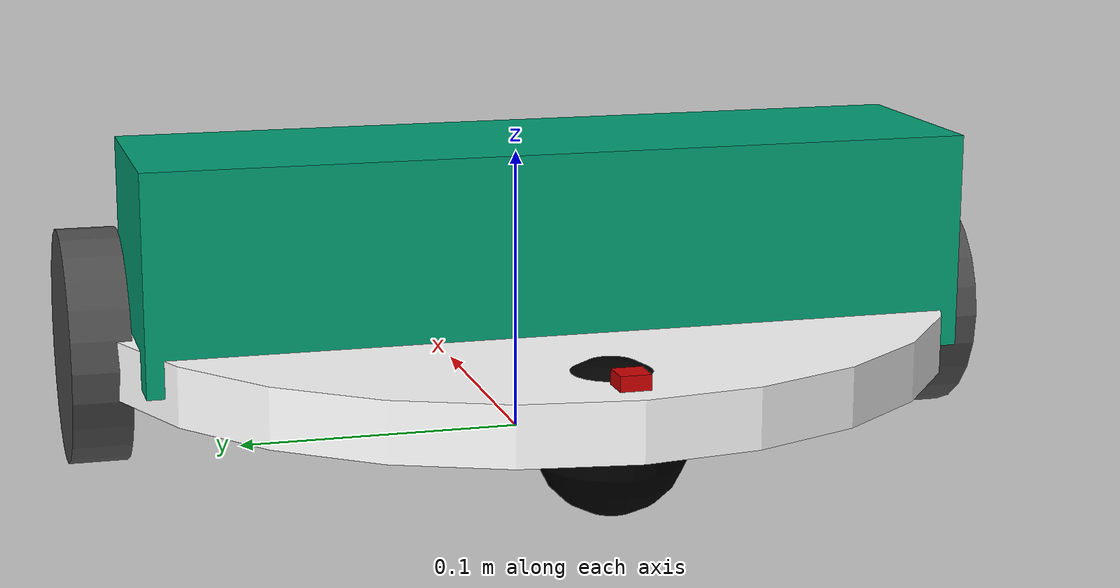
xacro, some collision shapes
<?xml version="1.0"?>
<robot name="differential_wheeled_robot" xmlns:xacro="http://www.ros.org/wiki/xacro">
  <xacro:include filename="$(find simple_robot_description_2wheels)/urdf/wheel.urdf.xacro" />

  <!-- PROPERTY LIST -->
  <!--All units in m-kg-s-radians unit system -->
  <xacro:property name="M_PI" value="3.1415926535897931" />
  <xacro:property name="M_PI_2" value="1.570796327" />
  <xacro:property name="DEG_TO_RAD" value="0.017453293" />

  <!-- Main body radius and height -->
  <!-- Main Body Cylinder base   -->
  <xacro:property name="base_height" value="0.02" />
  <xacro:property name="base_radius" value="0.15" />
  <xacro:property name="base_mass" value="5" /> <!-- in kg-->

  <!-- caster wheel radius and height -->
  <!-- caster wheel mass -->
  <xacro:property name="caster_f_height" value="0.04" />
  <xacro:property name="caster_f_radius" value="0.025" />
  <xacro:property name="caster_f_mass" value="0.5" /> <!-- in kg-->

  <!-- caster wheel radius and height -->
  <!-- caster wheel mass -->
  <xacro:property name="caster_b_height" value="0.04" />
  <xacro:property name="caster_b_radius" value="0.025" />
  <xacro:property name="caster_b_mass" value="0.5" /> <!-- in kg-->

  <!-- Wheels -->
  <xacro:property name="wheel_mass" value="2.5" /> --> <!-- in kg-->
  <xacro:property name="base_x_origin_to_wheel_origin" value="0.25" />
  <xacro:property name="base_y_origin_to_wheel_origin" value="0.3" />
  <xacro:property name="base_z_origin_to_wheel_origin" value="0.0" />

  <!-- Macro for calculating inertia of cylinder -->
  <xacro:macro name="cylinder_inertia" params="m r h">
    <inertia  ixx="${m*(3*r*r+h*h)/12}" ixy = "0" ixz = "0"
      iyy="${m*(3*r*r+h*h)/12}" iyz = "0"
      izz="${m*r*r/2}" />
    </xacro:macro>

    <!-- BASE-FOOTPRINT -->
    <!-- base_footprint is a fictitious link(frame) that is on the ground right below base_link origin -->
    <link name="base_footprint">
      <inertial>
        <mass value="0.0001" />
        <origin xyz="0 0 0" />
        <inertia ixx="0.0001" ixy="0.0" ixz="0.0"
          iyy="0.0001" iyz="0.0"
          izz="0.0001" />
        </inertial>
        <visual>
          <origin xyz="0 0 0" rpy="0 0 0" />
          <geometry>
            <box size="0.001 0.001 0.001" />
          </geometry>
        </visual>
      </link>

      <gazebo reference="base_footprint">
        <turnGravityOff>false</turnGravityOff>
      </gazebo>

      <joint name="base_footprint_joint" type="fixed">
        <origin xyz="0 0 ${wheel_radius - base_z_origin_to_wheel_origin}" rpy="0 0 0" />
        <parent link="base_footprint"/>
        <child link="base_link" />
      </joint>

      <!-- BASE-LINK -->
      <!--Actual body/chassis of the robot-->
      <link name="base_link">
        <inertial>
          <mass value="${base_mass}" />
          <origin xyz="0 0 0" />
          <!--The 3x3 rotational inertia matrix. -->
          <cylinder_inertia  m="${base_mass}" r="${base_radius}" h="${base_height}" />
        </inertial>
        <visual>
          <origin xyz="0 0 0" rpy="0 0 0" />
          <geometry>
            <cylinder length="${base_height}" radius="${base_radius}" />
          </geometry>
          <material name="White" />
        </visual>
        <collision>
          <origin xyz="0 0 0" rpy="0 0 0 " />
          <geometry>
            <cylinder length="${base_height}" radius="${base_radius}" />
          </geometry>
        </collision>
      </link>

      <gazebo reference="base_link">
        <material>Gazebo/White</material>
        <turnGravityOff>false</turnGravityOff>
      </gazebo>

      <!--Caster front  -->

      <link name="caster_front_link">
        <visual>
          <origin xyz="0 0.02 0" rpy="${M_PI/2} 0 0" />
          <geometry>
            <sphere radius="${caster_f_radius}" />
          </geometry>
          <material name="Black" />
        </visual>
        <collision>
          <geometry>
            <sphere radius="${caster_f_radius}" />
          </geometry>
          <origin xyz="0 0.02 0" rpy="${M_PI/2} 0 0" />
        </collision>
        <inertial>
          <mass value="${caster_f_mass}" />
          <origin xyz="0 0 0" />
          <inertia ixx="0.001" ixy="0.0" ixz="0.0"
            iyy="0.001" iyz="0.0"
            izz="0.001" />
          </inertial>
        </link>

        <joint name="caster_front_joint" type="fixed">
          <parent link="base_link"/>
          <child link="caster_front_link"/>
          <origin xyz="0.115 0.0 0.007" rpy="${-M_PI/2} 0 0"/>
        </joint>

        <gazebo reference="caster_front_link">
          <material>Gazebo/Orange</material>
          <turnGravityOff>false</turnGravityOff>
        </gazebo>

        <!--Caster back  -->
        <link name="caster_back_link">
          <visual>
            <origin xyz="0.02 0.02 0 " rpy="${M_PI/2} 0 0" />
            <geometry>
              <sphere radius="${caster_b_radius}" />
            </geometry>
            <material name="Black" />
          </visual>
          <collision>
            <geometry>
              <sphere radius="${caster_b_radius}" />
            </geometry>
            <origin xyz="0 0.02 0 " rpy="${M_PI/2} 0 0" />
          </collision>
          <inertial>
            <mass value="${caster_b_mass}" />
            <origin xyz="0 0 0" />
            <inertia ixx="0.001" ixy="0.0" ixz="0.0"
              iyy="0.001" iyz="0.0"
              izz="0.001" />
            </inertial>
          </link>

          <joint name="caster_back_joint" type="fixed">
            <parent link="base_link"/>
            <child link="caster_back_link"/>
            <origin xyz="-0.135 0.0 0.009" rpy="${-M_PI/2} 0 0"/>
          </joint>

          <gazebo reference="caster_back_link">
            <material>Gazebo/Orange</material>
            <turnGravityOff>false</turnGravityOff>
          </gazebo>

          <!-- Wheel Definitions -->

          <wheel fb="front" lr="right" parent="base_link" translateX="0" translateY="0.5" flipY="1"/>
          <wheel fb="front" lr="left" parent="base_link" translateX="0" translateY="-0.5" flipY="1"/>

          <!-- Imu 1-->
          <link name="imu_link1">
            <visual>
              <origin xyz="0 0 0" rpy="0 0 0"/>
              <geometry>
                <box size="0.01 0.01 0.01" />
              </geometry>
               <material name="Blue" />
            </visual>

            <inertial>
              <mass value="0.001"/>
              <origin xyz="0 0 0" rpy="0 0 0"/>
              <inertia ixx="1e-6" ixy="0" ixz="0" iyy="1e-6" iyz="0" izz="1e-6" />
            </inertial>
          </link>

          <gazebo reference="imu_link1">
            <material>Gazebo/Blue</material>
            <turnGravityOff>false</turnGravityOff>
          </gazebo>

          <joint name="imu_joint1" type="fixed">
            <origin xyz="0.135 0 0.01" rpy="0 0 0"/>
            <parent link="base_link" />
            <child link="imu_link1" />
          </joint>

          <!-- Imu 2-->
          <link name="imu_link2">
            <visual>
              <origin xyz="0 0 0" rpy="0 0 0"/>
              <geometry>
                <box size="0.01 0.01 0.01" />
              </geometry>
               <material name="Red" />
            </visual>

            <inertial>
              <mass value="0.001"/>
              <origin xyz="0 0 0" rpy="0 0 0"/>
              <inertia ixx="1e-6" ixy="0" ixz="0" iyy="1e-6" iyz="0" izz="1e-6" />
            </inertial>
          </link>

          <gazebo reference="imu_link2">
            <material>Gazebo/Red</material>
            <turnGravityOff>false</turnGravityOff>
          </gazebo>

          <joint name="imu_joint2" type="fixed">
            <origin xyz="-0.135 0 0.01" rpy="0 0 0"/>
            <parent link="base_link" />
            <child link="imu_link2" />
          </joint>

          <!-- Kinect -->
          <joint name="camera_rgb_joint" type="fixed">
            <origin xyz="0 0 0.05" rpy="0 0 0"/>
            <parent link="base_link"/>
            <child link="camera_rgb_frame" />
          </joint>

          <link name="camera_rgb_frame"/>

          <joint name="camera_rgb_optical_joint" type="fixed">
            <origin xyz="0 0 0" rpy="${-M_PI/2} 0 ${-M_PI/2}" />
            <parent link="camera_rgb_frame" />
            <child link="camera_rgb_optical_frame" />
          </joint>

          <link name="camera_rgb_optical_frame"/>

          <joint name="camera_joint" type="fixed">
            <origin xyz="-0.031 0 -0.016" rpy="0 0 0"/>
            <parent link="camera_rgb_frame"/>
            <child link="camera_link"/>
          </joint>

          <link name="camera_link">
            <visual>
              <origin xyz="0 0 0" rpy="0 0 ${M_PI/2}"/>
              <geometry>
                <mesh filename="package://simple_robot_description_2wheels/meshes/kinect.dae"/>
              </geometry>
            </visual>
            <collision>
              <origin xyz="0.0 0.0 0.0" rpy="0 0 0"/>
              <geometry>
                <box size="0.07271 0.27794 0.073"/>
              </geometry>
            </collision>
            <inertial>
              <mass value="0.564" />
              <origin xyz="0 0 0" />
              <inertia ixx="0.003881243" ixy="0.0" ixz="0.0"
                       iyy="0.000498940" iyz="0.0"
                       izz="0.003879257" />
            </inertial>
          </link>

          <joint name="camera_depth_joint" type="fixed">
            <origin xyz="0 0 0" rpy="0 0 0" />
            <parent link="camera_rgb_frame" />
            <child link="camera_depth_frame" />
          </joint>
          <link name="camera_depth_frame"/>

          <joint name="camera_depth_optical_joint" type="fixed">
            <origin xyz="0 0 0" rpy="${-M_PI/2} 0 ${-M_PI/2}" />
            <parent link="camera_depth_frame" />
            <child link="camera_depth_optical_frame" />
          </joint>
          <link name="camera_depth_optical_frame"/>

    <!-- Bring in simulation data for Gazebo.-->
    <xacro:include filename="$(find simple_robot_description_2wheels)/urdf/diff_wheeled_robot.gazebo" />

  </robot>

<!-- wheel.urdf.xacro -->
<robot name="wheel" xmlns:xacro="http://www.ros.org/wiki/xacro">

  <!-- Wheels -->
  <xacro:property name="wheel_radius" value="0.04" />
  <xacro:property name="wheel_height" value="0.02" />
  <xacro:property name="wheel_mass" value="2.5" /> <!-- in kg-->

  <xacro:property name="base_x_origin_to_wheel_origin" value="0.25" />
  <xacro:property name="base_y_origin_to_wheel_origin" value="0.3" />
  <xacro:property name="base_z_origin_to_wheel_origin" value="0.0" />

  <xacro:macro name="cylinder_inertia" params="m r h">
    <inertia  ixx="${m*(3*r*r+h*h)/12}" ixy = "0" ixz = "0"
              iyy="${m*(3*r*r+h*h)/12}" iyz = "0"
              izz="${m*r*r/2}" />
  </xacro:macro>

  <xacro:macro name="wheel" params="fb lr parent translateX translateY flipY"> <!--fb : front, back ; lr: left, right -->
    <link name="${fb}_${lr}_wheel">
      <visual>
        <origin xyz="0 0 0" rpy="${flipY*M_PI/2} 0  0 " />
        <geometry>
          <cylinder length="${wheel_height}" radius="${wheel_radius}" />
        </geometry>
        <material name="DarkGray" />
      </visual>
      <collision>
        <origin xyz="0 0 0" rpy="${flipY*M_PI/2} 0 0 " />
        <geometry>
          <cylinder length="${wheel_height}" radius="${wheel_radius}" />
        </geometry>
      </collision>
      <inertial>
        <mass value="${wheel_mass}" />
        <origin xyz="0 0 0" />
        <cylinder_inertia  m="${wheel_mass}" r="${wheel_radius}" h="${wheel_height}" />
      </inertial>
    </link>

    <gazebo reference="${fb}_${lr}_wheel">
      <mu1 value="1.0"/>
      <mu2 value="1.0"/>
      <kp  value="10000000.0" />
      <kd  value="1.0" />
      <fdir1 value="1 0 0"/>
      <material>Gazebo/Black</material>
      <turnGravityOff>false</turnGravityOff>
    </gazebo>

    <joint name="${fb}_${lr}_joint" type="continuous">
      <parent link="${parent}"/>
      <child link="${fb}_${lr}_wheel"/>
      <origin xyz="${translateX * base_x_origin_to_wheel_origin} ${translateY * base_y_origin_to_wheel_origin} ${base_z_origin_to_wheel_origin}" rpy="0 0 0" />
      <axis xyz="0 1 0" rpy="0  0" />
      <limit effort="100" velocity="100"/>
      <joint_properties damping="0.0" friction="0.0"/>
    </joint>

  </xacro:macro>
</robot>

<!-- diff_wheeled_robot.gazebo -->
<robot>

  <!--Move wheels custom behaviour-->
  <gazebo>
    <plugin name="move_wheels" filename="libmoveWheels_plugin.so">
    </plugin>
  </gazebo>

  <!--Get encoders ticks behaviour-->
  <gazebo>
    <plugin name="encoders_ticks" filename="libencodersTicks_plugin.so">
    </plugin>
  </gazebo>

  <!--Get Odometry-->
  <gazebo>
    <plugin name="get_odom" filename="libodom_plugin.so">
      <frontLeftJoint>front_left_joint</frontLeftJoint>
      <frontRightJoint>front_right_joint</frontRightJoint>
      <wheelSeparation>0.3</wheelSeparation>
      <wheelDiameter>0.08</wheelDiameter>
      <updateRate>40</updateRate>
    </plugin>
  </gazebo>

  <!-- Defining the colors used in this robot -->
  <material name="Black">
    <color rgba="0.0 0.0 0.0 1.0"/>
  </material>

  <material name="Red">
    <color rgba="0.8 0.0 0.0 1.0"/>
  </material>

  <material name="White">
    <color rgba="1.0 1.0 1.0 1.0"/>
  </material>

  <material name="Blue">
    <color rgba="0.0 0.0 0.8 1.0"/>
  </material>

  <!-- hokuyo -->
  <gazebo reference="hokuyo_link">
    <sensor type="gpu_ray" name="head_hokuyo_sensor">
      <pose>0 0 0 0 0 0</pose>
      <visualize>false</visualize>
      <update_rate>40</update_rate>
      <ray>
        <scan>
          <horizontal>
            <samples>720</samples>
            <resolution>1</resolution>
            <min_angle>-1.570796</min_angle>
            <max_angle>1.570796</max_angle>
          </horizontal>
        </scan>
        <range>
          <min>0.10</min>
          <max>30.0</max>
          <resolution>0.01</resolution>
        </range>
        <noise>
          <type>gaussian</type>
          <mean>0.0</mean>
          <stddev>0.01</stddev>
        </noise>
      </ray>
      <plugin name="gazebo_ros_head_hokuyo_controller" filename="libgazebo_ros_gpu_laser.so">
        <topicName>/scan</topicName>
        <frameName>hokuyo_link</frameName>
      </plugin>
    </sensor>
  </gazebo>

  <!-- IMUs -->

  <!-- works well with robot_localisation localisation
  (in robot_pose_ekf you get an error because of the zero covariance in z)-->

  <gazebo>
    <plugin name="imu" filename="libhector_gazebo_ros_imu.so">
      <updateRate>40.0</updateRate>
      <robotNamespace>/</robotNamespace>
      <bodyName>imu_link1</bodyName>
      <frameId>imu_link1</frameId>
      <topicName>imu_data_blue</topicName>
      <accelOffset>0 0 0</accelOffset>
      <accelDrift>0.005 0.005 0.005</accelDrift>
      <accelGaussianNoise>0.005 0.005 0.005</accelGaussianNoise>
      <rateOffset>0 0 0</rateOffset>
      <rateDrift>0.005 0.005 0.005 </rateDrift>
      <rateGaussianNoise>0.005 0.005 0.005 </rateGaussianNoise>
      <headingOffset>0</headingOffset>
      <headingDrift>0.005</headingDrift>
      <headingGaussianNoise>0.005</headingGaussianNoise>
    </plugin>
  </gazebo>

  <gazebo>
    <plugin name="imu" filename="libhector_gazebo_ros_imu.so">
      <updateRate>40.0</updateRate>
      <robotNamespace>/</robotNamespace>
      <bodyName>imu_link2</bodyName>
      <frameId>imu_link2</frameId>
      <topicName>imu_data_red</topicName>
      <accelOffset>0 0 0</accelOffset>
      <accelDrift>0.05 0.05 0.05</accelDrift>
      <accelGaussianNoise>0.5 0.5 0.5</accelGaussianNoise>
      <rateOffset>0 0 0</rateOffset>
      <rateDrift>0.05 0.05 0.05 </rateDrift>
      <rateGaussianNoise>0.5 0.5 0.5 </rateGaussianNoise>
      <headingOffset>10</headingOffset>
      <headingDrift>0.05</headingDrift>
      <headingGaussianNoise>0.5</headingGaussianNoise>
    </plugin>
  </gazebo>

<!-- works well with robot_pose_ekf localisation -->

<!-- Ground truth odometry -->
<gazebo>
  <plugin filename="libgazebo_ros_p3d.so" name="quadrotor_groundtruth_sim">
    <updateRate>40.0</updateRate>
    <bodyName>base_footprint</bodyName>
    <topicName>ground_truth/state</topicName>
    <gaussianNoise>0.0</gaussianNoise>
    <frameName>map</frameName>
  </plugin>
</gazebo>

<gazebo reference="camera_link">
      <sensor type="depth" name="camera">
        <always_on>true</always_on>
        <update_rate>20.0</update_rate>
        <camera>
          <horizontal_fov>${60.0*M_PI/180.0}</horizontal_fov>
          <image>
            <format>B8G8R8</format>
            <width>640</width>
            <height>480</height>
          </image>
          <clip>
            <near>0.05</near>
            <far>8.0</far>
          </clip>
        </camera>
        <plugin name="kinect_camera_controller" filename="libgazebo_ros_openni_kinect.so">
          <cameraName>camera</cameraName>
          <alwaysOn>true</alwaysOn>
          <updateRate>10</updateRate>
          <imageTopicName>rgb/image_raw</imageTopicName>
          <depthImageTopicName>depth/image_raw</depthImageTopicName>
          <pointCloudTopicName>depth/points</pointCloudTopicName>
          <cameraInfoTopicName>rgb/camera_info</cameraInfoTopicName>
          <depthImageCameraInfoTopicName>depth/camera_info</depthImageCameraInfoTopicName>
          <frameName>camera_depth_optical_frame</frameName>
          <baseline>0.1</baseline>
          <distortion_k1>0.0</distortion_k1>
          <distortion_k2>0.0</distortion_k2>
          <distortion_k3>0.0</distortion_k3>
          <distortion_t1>0.0</distortion_t1>
          <distortion_t2>0.0</distortion_t2>
          <pointCloudCutoff>0.4</pointCloudCutoff>
        </plugin>
      </sensor>
</gazebo>
</robot>
